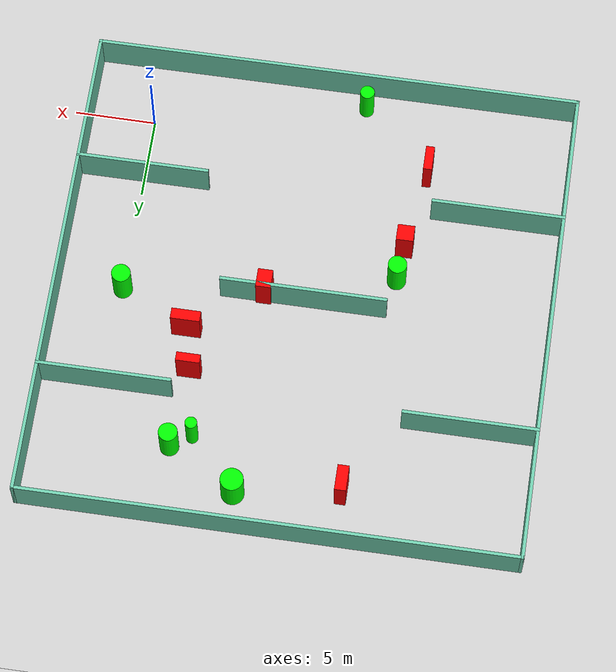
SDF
<sdf version="1.7">
 <world name="default">
  <light name="sun" type="directional">
   <pose>0 0 10 0 -0 0</pose>
   <diffuse>0.8 0.8 0.8 1</diffuse>
   <specular>0.2 0.2 0.2 1</specular>
   <attenuation>
    <range>1000</range>
    <constant>0.9</constant>
    <linear>0.01</linear>
    <quadratic>0.001</quadratic>
   </attenuation>
   <direction>-0.5 0.1 -0.9</direction>
   <spot><inner_angle>0</inner_angle><outer_angle>0</outer_angle><falloff>0</falloff></spot>
  </light>
  <model name="ground_plane">
   <static>1</static>
   <link name="link">
    <collision name="collision">
     <geometry><plane><normal>0 0 1</normal><size>100 100</size></plane></geometry>
     <surface>
      <contact><collide_bitmask>65535</collide_bitmask></contact>
      <friction><ode><mu>100</mu><mu2>50</mu2></ode></friction>
     </surface>
    </collision>
    <visual name="visual">
     <cast_shadows>0</cast_shadows>
     <geometry><plane><normal>0 0 1</normal><size>100 100</size></plane></geometry>
     <material>
      <script><uri>file://media/materials/scripts/gazebo.material</uri><name>Gazebo/Grey</name></script>
     </material>
    </visual>
   </link>
  </model>
  <gravity>0 0 -9.8</gravity>
  <magnetic_field>6e-06 2.3e-05 -4.2e-05</magnetic_field>
  <atmosphere type="adiabatic"/>
  <physics type="ode">
   <max_step_size>0.001</max_step_size>
   <real_time_factor>1</real_time_factor>
   <real_time_update_rate>1000</real_time_update_rate>
  </physics>
  <scene><ambient>0.4 0.4 0.4 1</ambient><background>0.7 0.7 0.7 1</background><shadows>1</shadows></scene>
  <spherical_coordinates>
   <surface_model>EARTH_WGS84</surface_model>
   <latitude_deg>0</latitude_deg>
   <longitude_deg>0</longitude_deg>
   <elevation>0</elevation>
   <heading_deg>0</heading_deg>
  </spherical_coordinates>
  <model name="my_base_walls">
   <link name="Wall_10">
    <collision name="Wall_10_Collision">
     <geometry><box><size>8.2 0.2 2.5</size></box></geometry>
     <pose>0 0 1.25 0 -0 0</pose>
    </collision>
    <visual name="Wall_10_Visual">
     <pose>0 0 1.25 0 -0 0</pose>
     <geometry><box><size>8.2 0.2 2.5</size></box></geometry>
     <material>
      <script><uri>file://media/materials/scripts/gazebo.material</uri><name>Gazebo/Grey</name></script>
      <ambient>0.435294 0.796078 0.67451 1</ambient>
     </material>
     <meta><layer>0</layer></meta>
    </visual>
    <pose>-11 -7 0 0 -0 0</pose>
   </link>
   <link name="Wall_12">
    <collision name="Wall_12_Collision">
     <geometry><box><size>8.2 0.2 2.5</size></box></geometry>
     <pose>0 0 1.25 0 -0 0</pose>
    </collision>
    <visual name="Wall_12_Visual">
     <pose>0 0 1.25 0 -0 0</pose>
     <geometry><box><size>8.2 0.2 2.5</size></box></geometry>
     <material>
      <script><uri>file://media/materials/scripts/gazebo.material</uri><name>Gazebo/Grey</name></script>
      <ambient>0.435294 0.796078 0.67451 1</ambient>
     </material>
     <meta><layer>0</layer></meta>
    </visual>
    <pose>-11 7 0 0 -0 0</pose>
   </link>
   <link name="Wall_14">
    <collision name="Wall_14_Collision">
     <geometry><box><size>8.2 0.2 2.5</size></box></geometry>
     <pose>0 0 1.25 0 -0 0</pose>
    </collision>
    <visual name="Wall_14_Visual">
     <pose>0 0 1.25 0 -0 0</pose>
     <geometry><box><size>8.2 0.2 2.5</size></box></geometry>
     <material>
      <script><uri>file://media/materials/scripts/gazebo.material</uri><name>Gazebo/Grey</name></script>
      <ambient>0.435294 0.796078 0.67451 1</ambient>
     </material>
     <meta><layer>0</layer></meta>
    </visual>
    <pose>11 7 0 0 -0 3.14159</pose>
   </link>
   <link name="Wall_16">
    <collision name="Wall_16_Collision">
     <geometry><box><size>10.2 0.2 2.5</size></box></geometry>
     <pose>0 0 1.25 0 -0 0</pose>
    </collision>
    <visual name="Wall_16_Visual">
     <pose>0 0 1.25 0 -0 0</pose>
     <geometry><box><size>10.2 0.2 2.5</size></box></geometry>
     <material>
      <script><uri>file://media/materials/scripts/gazebo.material</uri><name>Gazebo/Grey</name></script>
      <ambient>0.435294 0.796078 0.67451 1</ambient>
     </material>
     <meta><layer>0</layer></meta>
    </visual>
    <pose>0 0 0 0 -0 3.14159</pose>
   </link>
   <link name="Wall_2">
    <collision name="Wall_2_Collision">
     <geometry><box><size>30.2 0.2 2.5</size></box></geometry>
     <pose>0 0 1.25 0 -0 0</pose>
    </collision>
    <visual name="Wall_2_Visual">
     <pose>0 0 1.25 0 -0 0</pose>
     <geometry><box><size>30.2 0.2 2.5</size></box></geometry>
     <material>
      <script><uri>file://media/materials/scripts/gazebo.material</uri><name>Gazebo/Grey</name></script>
      <ambient>0.435294 0.796078 0.67451 1</ambient>
     </material>
     <meta><layer>0</layer></meta>
    </visual>
    <pose>0 -15 0 0 -0 3.14159</pose>
   </link>
   <link name="Wall_3">
    <collision name="Wall_3_Collision">
     <geometry><box><size>30.2 0.2 2.5</size></box></geometry>
     <pose>0 0 1.25 0 -0 0</pose>
    </collision>
    <visual name="Wall_3_Visual">
     <pose>0 0 1.25 0 -0 0</pose>
     <geometry><box><size>30.2 0.2 2.5</size></box></geometry>
     <material>
      <script><uri>file://media/materials/scripts/gazebo.material</uri><name>Gazebo/Grey</name></script>
      <ambient>0.435294 0.796078 0.67451 1</ambient>
     </material>
     <meta><layer>0</layer></meta>
    </visual>
    <pose>-15 0 0 0 -0 1.5708</pose>
   </link>
   <link name="Wall_4">
    <collision name="Wall_4_Collision">
     <geometry><box><size>30.2 0.2 2.5</size></box></geometry>
     <pose>0 0 1.25 0 -0 0</pose>
    </collision>
    <visual name="Wall_4_Visual">
     <pose>0 0 1.25 0 -0 0</pose>
     <geometry><box><size>30.2 0.2 2.5</size></box></geometry>
     <material>
      <script><uri>file://media/materials/scripts/gazebo.material</uri><name>Gazebo/Grey</name></script>
      <ambient>0.435294 0.796078 0.67451 1</ambient>
     </material>
     <meta><layer>0</layer></meta>
    </visual>
    <pose>0 15 0 0 -0 0</pose>
   </link>
   <link name="Wall_6">
    <collision name="Wall_6_Collision">
     <geometry><box><size>30.2 0.2 2.5</size></box></geometry>
     <pose>0 0 1.25 0 -0 0</pose>
    </collision>
    <visual name="Wall_6_Visual">
     <pose>0 0 1.25 0 -0 0</pose>
     <geometry><box><size>30.2 0.2 2.5</size></box></geometry>
     <material>
      <script><uri>file://media/materials/scripts/gazebo.material</uri><name>Gazebo/Grey</name></script>
      <ambient>0.435294 0.796078 0.67451 1</ambient>
     </material>
     <meta><layer>0</layer></meta>
    </visual>
    <pose>15 0 0 0 -0 1.5708</pose>
   </link>
   <link name="Wall_8">
    <collision name="Wall_8_Collision">
     <geometry><box><size>8.2 0.2 2.5</size></box></geometry>
     <pose>0 0 1.25 0 -0 0</pose>
    </collision>
    <visual name="Wall_8_Visual">
     <pose>0 0 1.25 0 -0 0</pose>
     <geometry><box><size>8.2 0.2 2.5</size></box></geometry>
     <material>
      <script><uri>file://media/materials/scripts/gazebo.material</uri><name>Gazebo/Grey</name></script>
      <ambient>0.435294 0.796078 0.67451 1</ambient>
     </material>
     <meta><layer>0</layer></meta>
    </visual>
    <pose>11 -7 0 0 -0 3.14159</pose>
   </link>
   <static>1</static>
   <pose>-11 11 0 0 -0 0</pose>
  </model>
  <model name="cylinder1">
   <static>1</static>
   <link name="link">
    <inertial>
     <mass>1</mass>
     <inertia><ixx>0.5</ixx><ixy>0</ixy><ixz>0</ixz><iyy>0.5</iyy><iyz>0</iyz><izz>1</izz></inertia>
    </inertial>
    <collision name="collision">
     <geometry><cylinder><radius>0.5797427126663679</radius><length>2.5</length></cylinder></geometry>
    </collision>
    <visual name="visual">
     <geometry><cylinder><radius>0.5797427126663679</radius><length>2.5</length></cylinder></geometry>
     <material>
      <ambient>0 1 0 1</ambient>
      <diffuse>0 1 0 1</diffuse>
      <specular>0.1 0.1 0.1 1</specular>
      <emissive>0 0 0 0</emissive>
     </material>
    </visual>
   </link>
   <pose>0.03501099245362127 11.561067543030152 1.25 0 0 0</pose>
  </model>
  <model name="cylinder2">
   <static>1</static>
   <link name="link">
    <inertial>
     <mass>1</mass>
     <inertia><ixx>0.5</ixx><ixy>0</ixy><ixz>0</ixz><iyy>0.5</iyy><iyz>0</iyz><izz>1</izz></inertia>
    </inertial>
    <collision name="collision">
     <geometry><cylinder><radius>0.5760214045225652</radius><length>2.5</length></cylinder></geometry>
    </collision>
    <visual name="visual">
     <geometry><cylinder><radius>0.5760214045225652</radius><length>2.5</length></cylinder></geometry>
     <material>
      <ambient>0 1 0 1</ambient>
      <diffuse>0 1 0 1</diffuse>
      <specular>0.1 0.1 0.1 1</specular>
      <emissive>0 0 0 0</emissive>
     </material>
    </visual>
   </link>
   <pose>-4.448243976779578 21.30379642601708 1.25 0 0 0</pose>
  </model>
  <model name="cylinder3">
   <static>1</static>
   <link name="link">
    <inertial>
     <mass>1</mass>
     <inertia><ixx>0.5</ixx><ixy>0</ixy><ixz>0</ixz><iyy>0.5</iyy><iyz>0</iyz><izz>1</izz></inertia>
    </inertial>
    <collision name="collision">
     <geometry><cylinder><radius>0.5755081098001631</radius><length>2.5</length></cylinder></geometry>
    </collision>
    <visual name="visual">
     <geometry><cylinder><radius>0.5755081098001631</radius><length>2.5</length></cylinder></geometry>
     <material>
      <ambient>0 1 0 1</ambient>
      <diffuse>0 1 0 1</diffuse>
      <specular>0.1 0.1 0.1 1</specular>
      <emissive>0 0 0 0</emissive>
     </material>
    </visual>
   </link>
   <pose>-16.403218842439706 8.595130244301401 1.25 0 0 0</pose>
  </model>
  <model name="cylinder4">
   <static>1</static>
   <link name="link">
    <inertial>
     <mass>1</mass>
     <inertia><ixx>0.5</ixx><ixy>0</ixy><ixz>0</ixz><iyy>0.5</iyy><iyz>0</iyz><izz>1</izz></inertia>
    </inertial>
    <collision name="collision">
     <geometry><cylinder><radius>0.4434601226086925</radius><length>2.5</length></cylinder></geometry>
    </collision>
    <visual name="visual">
     <geometry><cylinder><radius>0.4434601226086925</radius><length>2.5</length></cylinder></geometry>
     <material>
      <ambient>0 1 0 1</ambient>
      <diffuse>0 1 0 1</diffuse>
      <specular>0.1 0.1 0.1 1</specular>
      <emissive>0 0 0 0</emissive>
     </material>
    </visual>
   </link>
   <pose>-13.00987601333144 -2.807648972514856 1.25 0 0 0</pose>
  </model>
  <model name="cylinder5">
   <static>1</static>
   <link name="link">
    <inertial>
     <mass>1</mass>
     <inertia><ixx>0.5</ixx><ixy>0</ixy><ixz>0</ixz><iyy>0.5</iyy><iyz>0</iyz><izz>1</izz></inertia>
    </inertial>
    <collision name="collision">
     <geometry><cylinder><radius>0.364067214429397</radius><length>2.5</length></cylinder></geometry>
    </collision>
    <visual name="visual">
     <geometry><cylinder><radius>0.364067214429397</radius><length>2.5</length></cylinder></geometry>
     <material>
      <ambient>0 1 0 1</ambient>
      <diffuse>0 1 0 1</diffuse>
      <specular>0.1 0.1 0.1 1</specular>
      <emissive>0 0 0 0</emissive>
     </material>
    </visual>
   </link>
   <pose>-5.698777382956372 20.522155557414354 1.25 0 0 0</pose>
  </model>
  <model name="cylinder6">
   <static>1</static>
   <link name="link">
    <inertial>
     <mass>1</mass>
     <inertia><ixx>0.5</ixx><ixy>0</ixy><ixz>0</ixz><iyy>0.5</iyy><iyz>0</iyz><izz>1</izz></inertia>
    </inertial>
    <collision name="collision">
     <geometry><cylinder><radius>0.69652904926014</radius><length>2.5</length></cylinder></geometry>
    </collision>
    <visual name="visual">
     <geometry><cylinder><radius>0.69652904926014</radius><length>2.5</length></cylinder></geometry>
     <material>
      <ambient>0 1 0 1</ambient>
      <diffuse>0 1 0 1</diffuse>
      <specular>0.1 0.1 0.1 1</specular>
      <emissive>0 0 0 0</emissive>
     </material>
    </visual>
   </link>
   <pose>-8.624067954735347 23.684763768876586 1.25 0 0 0</pose>
  </model>
  <model name="box1">
   <static>1</static>
   <link name="link">
    <inertial>
     <mass>1</mass>
     <inertia><ixx>0.083</ixx><ixy>0</ixy><ixz>0</ixz><iyy>0.083</iyy><iyz>0</iyz><izz>0.083</izz></inertia>
    </inertial>
    <collision name="collision">
     <geometry><box><size>0.692369469113304 1.5687511378762196 2.5</size></box></geometry>
    </collision>
    <visual name="visual">
     <geometry><box><size>0.692369469113304 1.5687511378762196 2.5</size></box></geometry>
     <material>
      <ambient>1 0 0 1</ambient>
      <diffuse>1 0 0 1</diffuse>
      <specular>0.1 0.1 0.1 1</specular>
      <emissive>0 0 0 0</emissive>
     </material>
    </visual>
    <sensor name="my_contact" type="contact">
     <contact><collision>box_collision</collision><topic>__default_topic__</topic></contact>
    </sensor>
   </link>
   <pose>-14.980306849091948 22.65334149507843 1.25 0 0 0</pose>
  </model>
  <model name="box2">
   <static>1</static>
   <link name="link">
    <inertial>
     <mass>1</mass>
     <inertia><ixx>0.083</ixx><ixy>0</ixy><ixz>0</ixz><iyy>0.083</iyy><iyz>0</iyz><izz>0.083</izz></inertia>
    </inertial>
    <collision name="collision">
     <geometry><box><size>0.9285587114275433 1.158513327002347 2.5</size></box></geometry>
    </collision>
    <visual name="visual">
     <geometry><box><size>0.9285587114275433 1.158513327002347 2.5</size></box></geometry>
     <material>
      <ambient>1 0 0 1</ambient>
      <diffuse>1 0 0 1</diffuse>
      <specular>0.1 0.1 0.1 1</specular>
      <emissive>0 0 0 0</emissive>
     </material>
    </visual>
    <sensor name="my_contact" type="contact">
     <contact><collision>box_collision</collision><topic>__default_topic__</topic></contact>
    </sensor>
   </link>
   <pose>-8.576268627859857 10.648156941283032 1.25 0 0 0</pose>
  </model>
  <model name="box3">
   <static>1</static>
   <link name="link">
    <inertial>
     <mass>1</mass>
     <inertia><ixx>0.083</ixx><ixy>0</ixy><ixz>0</ixz><iyy>0.083</iyy><iyz>0</iyz><izz>0.083</izz></inertia>
    </inertial>
    <collision name="collision">
     <geometry><box><size>1.0505373982090096 1.0209188309164372 2.5</size></box></geometry>
    </collision>
    <visual name="visual">
     <geometry><box><size>1.0505373982090096 1.0209188309164372 2.5</size></box></geometry>
     <material>
      <ambient>1 0 0 1</ambient>
      <diffuse>1 0 0 1</diffuse>
      <specular>0.1 0.1 0.1 1</specular>
      <emissive>0 0 0 0</emissive>
     </material>
    </visual>
    <sensor name="my_contact" type="contact">
     <contact><collision>box_collision</collision><topic>__default_topic__</topic></contact>
    </sensor>
   </link>
   <pose>-16.607464361251413 6.421299509204436 1.25 0 0 0</pose>
  </model>
  <model name="box4">
   <static>1</static>
   <link name="link">
    <inertial>
     <mass>1</mass>
     <inertia><ixx>0.083</ixx><ixy>0</ixy><ixz>0</ixz><iyy>0.083</iyy><iyz>0</iyz><izz>0.083</izz></inertia>
    </inertial>
    <collision name="collision">
     <geometry><box><size>0.5355351435131601 1.5641629370742602 2.5</size></box></geometry>
    </collision>
    <visual name="visual">
     <geometry><box><size>0.5355351435131601 1.5641629370742602 2.5</size></box></geometry>
     <material>
      <ambient>1 0 0 1</ambient>
      <diffuse>1 0 0 1</diffuse>
      <specular>0.1 0.1 0.1 1</specular>
      <emissive>0 0 0 0</emissive>
     </material>
    </visual>
    <sensor name="my_contact" type="contact">
     <contact><collision>box_collision</collision><topic>__default_topic__</topic></contact>
    </sensor>
   </link>
   <pose>-17.36954082379908 1.1662175696419173 1.25 0 0 0</pose>
  </model>
  <model name="box5">
   <static>1</static>
   <link name="link">
    <inertial>
     <mass>1</mass>
     <inertia><ixx>0.083</ixx><ixy>0</ixy><ixz>0</ixz><iyy>0.083</iyy><iyz>0</iyz><izz>0.083</izz></inertia>
    </inertial>
    <collision name="collision">
     <geometry><box><size>1.4560692564586213 0.537871957803876 2.5</size></box></geometry>
    </collision>
    <visual name="visual">
     <geometry><box><size>1.4560692564586213 0.537871957803876 2.5</size></box></geometry>
     <material>
      <ambient>1 0 0 1</ambient>
      <diffuse>1 0 0 1</diffuse>
      <specular>0.1 0.1 0.1 1</specular>
      <emissive>0 0 0 0</emissive>
     </material>
    </visual>
    <sensor name="my_contact" type="contact">
     <contact><collision>box_collision</collision><topic>__default_topic__</topic></contact>
    </sensor>
   </link>
   <pose>-4.853911114642152 16.42995059597294 1.25 0 0 0</pose>
  </model>
  <model name="box6">
   <static>1</static>
   <link name="link">
    <inertial>
     <mass>1</mass>
     <inertia><ixx>0.083</ixx><ixy>0</ixy><ixz>0</ixz><iyy>0.083</iyy><iyz>0</iyz><izz>0.083</izz></inertia>
    </inertial>
    <collision name="collision">
     <geometry><box><size>1.7832694895208616 0.6633790342402218 2.5</size></box></geometry>
    </collision>
    <visual name="visual">
     <geometry><box><size>1.7832694895208616 0.6633790342402218 2.5</size></box></geometry>
     <material>
      <ambient>1 0 0 1</ambient>
      <diffuse>1 0 0 1</diffuse>
      <specular>0.1 0.1 0.1 1</specular>
      <emissive>0 0 0 0</emissive>
     </material>
    </visual>
    <sensor name="my_contact" type="contact">
     <contact><collision>box_collision</collision><topic>__default_topic__</topic></contact>
    </sensor>
   </link>
   <pose>-4.264711799721546 13.715380767947483 1.25 0 0 0</pose>
  </model>
 </world>
</sdf>
